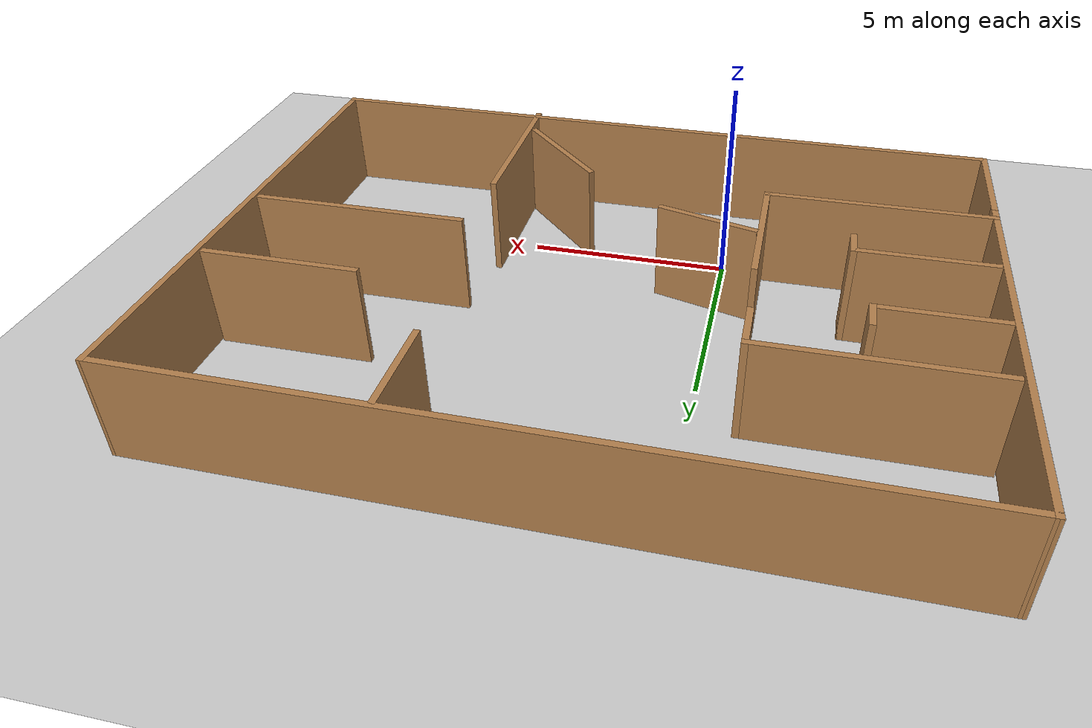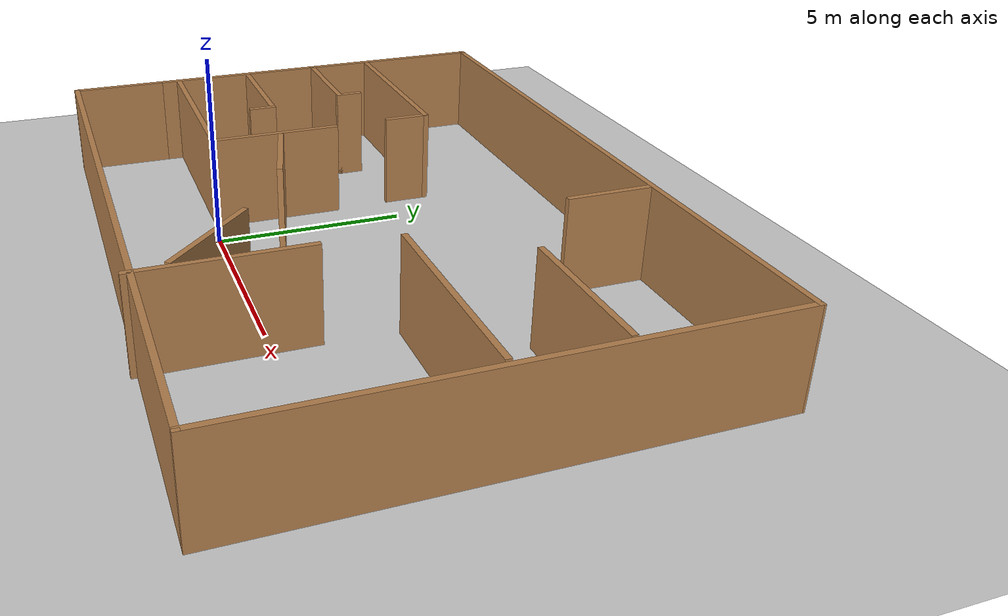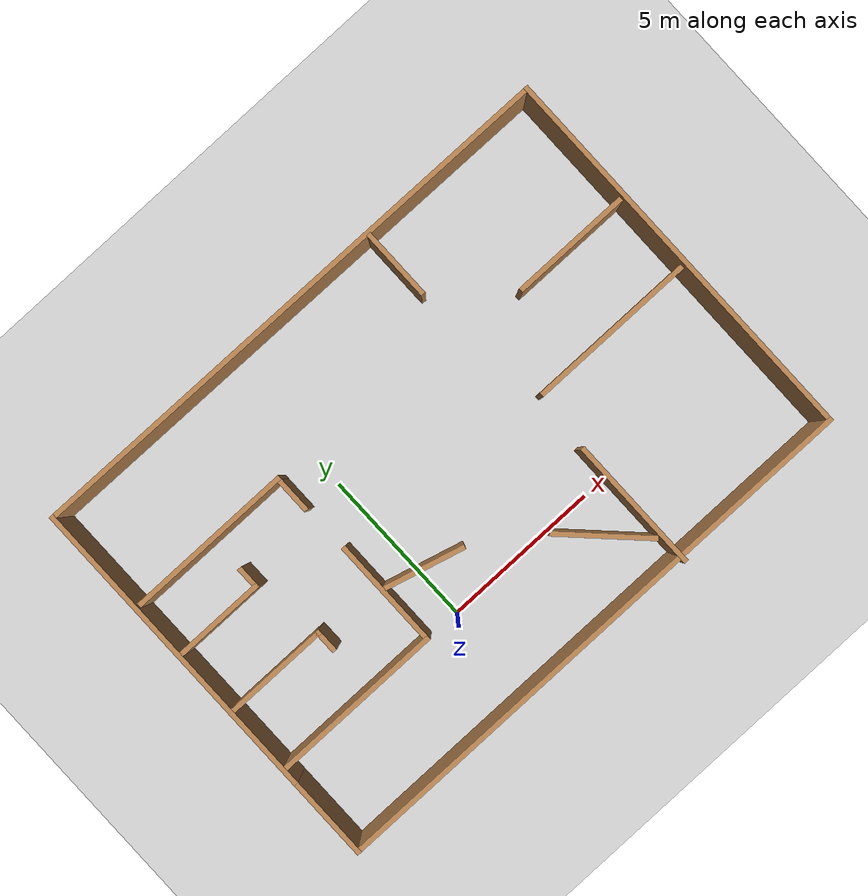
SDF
<sdf version="1.7">
 <world name="default">
  <light name="sun" type="directional">
   <pose>0 0 10 0 -0 0</pose>
   <diffuse>0.8 0.8 0.8 1</diffuse>
   <specular>0.2 0.2 0.2 1</specular>
   <attenuation>
    <range>1000</range>
    <constant>0.9</constant>
    <linear>0.01</linear>
    <quadratic>0.001</quadratic>
   </attenuation>
   <direction>-0.5 0.1 -0.9</direction>
   <spot><inner_angle>0</inner_angle><outer_angle>0</outer_angle><falloff>0</falloff></spot>
  </light>
  <model name="ground_plane">
   <static>1</static>
   <link name="link">
    <collision name="collision">
     <geometry><plane><normal>0 0 1</normal><size>100 100</size></plane></geometry>
     <surface>
      <contact><collide_bitmask>65535</collide_bitmask></contact>
      <friction><ode><mu>100</mu><mu2>50</mu2></ode></friction>
     </surface>
    </collision>
    <visual name="visual">
     <cast_shadows>0</cast_shadows>
     <geometry><plane><normal>0 0 1</normal><size>100 100</size></plane></geometry>
     <material>
      <script><uri>file://media/materials/scripts/gazebo.material</uri><name>Gazebo/Grey</name></script>
     </material>
    </visual>
   </link>
  </model>
  <gravity>0 0 -9.8</gravity>
  <magnetic_field>6e-06 2.3e-05 -4.2e-05</magnetic_field>
  <atmosphere type="adiabatic"/>
  <physics type="ode">
   <max_step_size>0.001</max_step_size>
   <real_time_factor>1</real_time_factor>
   <real_time_update_rate>1000</real_time_update_rate>
  </physics>
  <scene><ambient>0.4 0.4 0.4 1</ambient><background>0.7 0.7 0.7 1</background><shadows>1</shadows></scene>
  <spherical_coordinates>
   <surface_model>EARTH_WGS84</surface_model>
   <latitude_deg>0</latitude_deg>
   <longitude_deg>0</longitude_deg>
   <elevation>0</elevation>
   <heading_deg>0</heading_deg>
  </spherical_coordinates>
  <model name="map_3">
   <pose>2.48 3.29416 0 0 -0 0</pose>
   <link name="Wall_0">
    <collision name="Wall_0_Collision">
     <geometry><box><size>10 0.15 2.5</size></box></geometry>
     <pose>0 0 1.25 0 -0 0</pose>
    </collision>
    <visual name="Wall_0_Visual">
     <pose>0 0 1.25 0 -0 0</pose>
     <geometry><box><size>10 0.15 2.5</size></box></geometry>
     <material>
      <script><uri>file://media/materials/scripts/gazebo.material</uri><name>Gazebo/Wood</name></script>
      <ambient>1 1 1 1</ambient>
     </material>
     <meta><layer>0</layer></meta>
    </visual>
    <pose>-8.8 1.37084 0 0 -0 1.5708</pose>
   </link>
   <link name="Wall_10">
    <collision name="Wall_10_Collision">
     <geometry><box><size>1.25 0.15 2.5</size></box></geometry>
     <pose>0 0 1.25 0 -0 0</pose>
    </collision>
    <visual name="Wall_10_Visual">
     <pose>0 0 1.25 0 -0 0</pose>
     <geometry><box><size>1.25 0.15 2.5</size></box></geometry>
     <material>
      <script><uri>file://media/materials/scripts/gazebo.material</uri><name>Gazebo/Wood</name></script>
      <ambient>1 1 1 1</ambient>
     </material>
     <meta><layer>0</layer></meta>
    </visual>
    <pose>-3.50657 2.35627 0 0 -0 1.5708</pose>
   </link>
   <link name="Wall_11">
    <collision name="Wall_11_Collision">
     <geometry><box><size>5.25 0.15 2.5</size></box></geometry>
     <pose>0 0 1.25 0 -0 0</pose>
    </collision>
    <visual name="Wall_11_Visual">
     <pose>0 0 1.25 0 -0 0</pose>
     <geometry><box><size>5.25 0.15 2.5</size></box></geometry>
     <material>
      <script><uri>file://media/materials/scripts/gazebo.material</uri><name>Gazebo/Wood</name></script>
      <ambient>1 1 1 1</ambient>
     </material>
     <meta><layer>0</layer></meta>
    </visual>
    <pose>-6.05657 2.90627 0 0 -0 3.14159</pose>
   </link>
   <link name="Wall_13">
    <collision name="Wall_13_Collision">
     <geometry><box><size>3.25 0.15 2.5</size></box></geometry>
     <pose>0 0 1.25 0 -0 0</pose>
    </collision>
    <visual name="Wall_13_Visual">
     <pose>0 0 1.25 0 -0 0</pose>
     <geometry><box><size>3.25 0.15 2.5</size></box></geometry>
     <material>
      <script><uri>file://media/materials/scripts/gazebo.material</uri><name>Gazebo/Wood</name></script>
      <ambient>1 1 1 1</ambient>
     </material>
     <meta><layer>0</layer></meta>
    </visual>
    <pose>-7.09573 -0.977441 0 0 -0 0</pose>
   </link>
   <link name="Wall_14">
    <collision name="Wall_14_Collision">
     <geometry><box><size>0.75 0.15 2.5</size></box></geometry>
     <pose>0 0 1.25 0 -0 0</pose>
    </collision>
    <visual name="Wall_14_Visual">
     <pose>0 0 1.25 0 -0 0</pose>
     <geometry><box><size>0.75 0.15 2.5</size></box></geometry>
     <material>
      <script><uri>file://media/materials/scripts/gazebo.material</uri><name>Gazebo/Wood</name></script>
      <ambient>1 1 1 1</ambient>
     </material>
     <meta><layer>0</layer></meta>
    </visual>
    <pose>-5.54573 -1.27744 0 0 -0 -1.5708</pose>
   </link>
   <link name="Wall_16">
    <collision name="Wall_16_Collision">
     <geometry><box><size>3 0.15 2.5</size></box></geometry>
     <pose>0 0 1.25 0 -0 0</pose>
    </collision>
    <visual name="Wall_16_Visual">
     <pose>0 0 1.25 0 -0 0</pose>
     <geometry><box><size>3 0.15 2.5</size></box></geometry>
     <material>
      <script><uri>file://media/materials/scripts/gazebo.material</uri><name>Gazebo/Wood</name></script>
      <ambient>1 1 1 1</ambient>
     </material>
     <meta><layer>0</layer></meta>
    </visual>
    <pose>-7.37368 1.13329 0 0 -0 0</pose>
   </link>
   <link name="Wall_17">
    <collision name="Wall_17_Collision">
     <geometry><box><size>0.75 0.15 2.5</size></box></geometry>
     <pose>0 0 1.25 0 -0 0</pose>
    </collision>
    <visual name="Wall_17_Visual">
     <pose>0 0 1.25 0 -0 0</pose>
     <geometry><box><size>0.75 0.15 2.5</size></box></geometry>
     <material>
      <script><uri>file://media/materials/scripts/gazebo.material</uri><name>Gazebo/Wood</name></script>
      <ambient>1 1 1 1</ambient>
     </material>
     <meta><layer>0</layer></meta>
    </visual>
    <pose>-5.94868 1.43328 0 0 -0 1.5708</pose>
   </link>
   <link name="Wall_19">
    <collision name="Wall_19_Collision">
     <geometry><box><size>4.25 0.15 2.5</size></box></geometry>
     <pose>0 0 1.25 0 -0 0</pose>
    </collision>
    <visual name="Wall_19_Visual">
     <pose>0 0 1.25 0 -0 0</pose>
     <geometry><box><size>4.25 0.15 2.5</size></box></geometry>
     <material>
      <script><uri>file://media/materials/scripts/gazebo.material</uri><name>Gazebo/Wood</name></script>
      <ambient>1 1 1 1</ambient>
     </material>
     <meta><layer>0</layer></meta>
    </visual>
    <pose>3.25185 -4.24626 0 0 -0 1.5708</pose>
   </link>
   <link name="Wall_2">
    <collision name="Wall_2_Collision">
     <geometry><box><size>2.75 0.15 2.5</size></box></geometry>
     <pose>0 0 1.25 0 -0 0</pose>
    </collision>
    <visual name="Wall_2_Visual">
     <pose>0 0 1.25 0 -0 0</pose>
     <geometry><box><size>2.75 0.15 2.5</size></box></geometry>
     <material>
      <script><uri>file://media/materials/scripts/gazebo.material</uri><name>Gazebo/Wood</name></script>
      <ambient>1 1 1 1</ambient>
     </material>
     <meta><layer>0</layer></meta>
    </visual>
    <pose>-8.8 -4.85416 0 0 -0 -1.5708</pose>
   </link>
   <link name="Wall_21">
    <collision name="Wall_21_Collision">
     <geometry><box><size>5.25 0.15 2.5</size></box></geometry>
     <pose>0 0 1.25 0 -0 0</pose>
    </collision>
    <visual name="Wall_21_Visual">
     <pose>0 0 1.25 0 -0 0</pose>
     <geometry><box><size>5.25 0.15 2.5</size></box></geometry>
     <material>
      <script><uri>file://media/materials/scripts/gazebo.material</uri><name>Gazebo/Wood</name></script>
      <ambient>1 1 1 1</ambient>
     </material>
     <meta><layer>0</layer></meta>
    </visual>
    <pose>6.03447 -0.294676 0 0 -0 0</pose>
   </link>
   <link name="Wall_23">
    <collision name="Wall_23_Collision">
     <geometry><box><size>2.25 0.15 2.5</size></box></geometry>
     <pose>0 0 1.25 0 -0 0</pose>
    </collision>
    <visual name="Wall_23_Visual">
     <pose>0 0 1.25 0 -0 0</pose>
     <geometry><box><size>2.25 0.15 2.5</size></box></geometry>
     <material>
      <script><uri>file://media/materials/scripts/gazebo.material</uri><name>Gazebo/Wood</name></script>
      <ambient>1 1 1 1</ambient>
     </material>
     <meta><layer>0</layer></meta>
    </visual>
    <pose>2.87966 5.07562 0 0 -0 -1.5708</pose>
   </link>
   <link name="Wall_27">
    <collision name="Wall_27_Collision">
     <geometry><box><size>3.75 0.15 2.5</size></box></geometry>
     <pose>0 0 1.25 0 -0 0</pose>
    </collision>
    <visual name="Wall_27_Visual">
     <pose>0 0 1.25 0 -0 0</pose>
     <geometry><box><size>3.75 0.15 2.5</size></box></geometry>
     <material>
      <script><uri>file://media/materials/scripts/gazebo.material</uri><name>Gazebo/Wood</name></script>
      <ambient>1 1 1 1</ambient>
     </material>
     <meta><layer>0</layer></meta>
    </visual>
    <pose>6.8021 2.21762 0 0 -0 3.14159</pose>
   </link>
   <link name="Wall_29">
    <collision name="Wall_29_Collision">
     <geometry><box><size>3 0.15 2.5</size></box></geometry>
     <pose>0 0 1.25 0 -0 0</pose>
    </collision>
    <visual name="Wall_29_Visual">
     <pose>0 0 1.25 0 -0 0</pose>
     <geometry><box><size>3 0.15 2.5</size></box></geometry>
     <material>
      <script><uri>file://media/materials/scripts/gazebo.material</uri><name>Gazebo/Wood</name></script>
      <ambient>1 1 1 1</ambient>
     </material>
     <meta><layer>0</layer></meta>
    </visual>
    <pose>2.05813 -4.31163 0 0 -0 2.35619</pose>
   </link>
   <link name="Wall_3">
    <collision name="Wall_3_Collision">
     <geometry><box><size>17.75 0.15 2.5</size></box></geometry>
     <pose>0 0 1.25 0 -0 0</pose>
    </collision>
    <visual name="Wall_3_Visual">
     <pose>0 0 1.25 0 -0 0</pose>
     <geometry><box><size>17.75 0.15 2.5</size></box></geometry>
     <material>
      <script><uri>file://media/materials/scripts/gazebo.material</uri><name>Gazebo/Wood</name></script>
      <ambient>1 1 1 1</ambient>
     </material>
     <meta><layer>0</layer></meta>
    </visual>
    <pose>-0 -6.15416 0 0 -0 0</pose>
   </link>
   <link name="Wall_31">
    <collision name="Wall_31_Collision">
     <geometry><box><size>2.5 0.15 2.5</size></box></geometry>
     <pose>0 0 1.25 0 -0 0</pose>
    </collision>
    <visual name="Wall_31_Visual">
     <pose>0 0 1.25 0 -0 0</pose>
     <geometry><box><size>2.5 0.15 2.5</size></box></geometry>
     <material>
      <script><uri>file://media/materials/scripts/gazebo.material</uri><name>Gazebo/Wood</name></script>
      <ambient>1 1 1 1</ambient>
     </material>
     <meta><layer>0</layer></meta>
    </visual>
    <pose>-2.17306 -1.62231 0 0 -0 -0.261799</pose>
   </link>
   <link name="Wall_4">
    <collision name="Wall_4_Collision">
     <geometry><box><size>12.5 0.15 2.5</size></box></geometry>
     <pose>0 0 1.25 0 -0 0</pose>
    </collision>
    <visual name="Wall_4_Visual">
     <pose>0 0 1.25 0 -0 0</pose>
     <geometry><box><size>12.5 0.15 2.5</size></box></geometry>
     <material>
      <script><uri>file://media/materials/scripts/gazebo.material</uri><name>Gazebo/Wood</name></script>
      <ambient>1 1 1 1</ambient>
     </material>
     <meta><layer>0</layer></meta>
    </visual>
    <pose>8.8 0.020836 0 0 -0 1.5708</pose>
   </link>
   <link name="Wall_5">
    <collision name="Wall_5_Collision">
     <geometry><box><size>17.75 0.15 2.5</size></box></geometry>
     <pose>0 0 1.25 0 -0 0</pose>
    </collision>
    <visual name="Wall_5_Visual">
     <pose>0 0 1.25 0 -0 0</pose>
     <geometry><box><size>17.75 0.15 2.5</size></box></geometry>
     <material>
      <script><uri>file://media/materials/scripts/gazebo.material</uri><name>Gazebo/Wood</name></script>
      <ambient>1 1 1 1</ambient>
     </material>
     <meta><layer>0</layer></meta>
    </visual>
    <pose>-0 6.24584 0 0 -0 3.13591</pose>
   </link>
   <link name="Wall_7">
    <collision name="Wall_7_Collision">
     <geometry><box><size>5.5 0.15 2.5</size></box></geometry>
     <pose>0 0 1.25 0 -0 0</pose>
    </collision>
    <visual name="Wall_7_Visual">
     <pose>0 0 1.25 0 -0 0</pose>
     <geometry><box><size>5.5 0.15 2.5</size></box></geometry>
     <material>
      <script><uri>file://media/materials/scripts/gazebo.material</uri><name>Gazebo/Wood</name></script>
      <ambient>1 1 1 1</ambient>
     </material>
     <meta><layer>0</layer></meta>
    </visual>
    <pose>-6.12368 -3.11876 0 0 -0 0</pose>
   </link>
   <link name="Wall_8">
    <collision name="Wall_8_Collision">
     <geometry><box><size>3.5 0.15 2.5</size></box></geometry>
     <pose>0 0 1.25 0 -0 0</pose>
    </collision>
    <visual name="Wall_8_Visual">
     <pose>0 0 1.25 0 -0 0</pose>
     <geometry><box><size>3.5 0.15 2.5</size></box></geometry>
     <material>
      <script><uri>file://media/materials/scripts/gazebo.material</uri><name>Gazebo/Wood</name></script>
      <ambient>1 1 1 1</ambient>
     </material>
     <meta><layer>0</layer></meta>
    </visual>
    <pose>-3.44868 -1.44376 0 0 -0 1.5708</pose>
   </link>
   <static>1</static>
  </model>
 </world>
</sdf>
